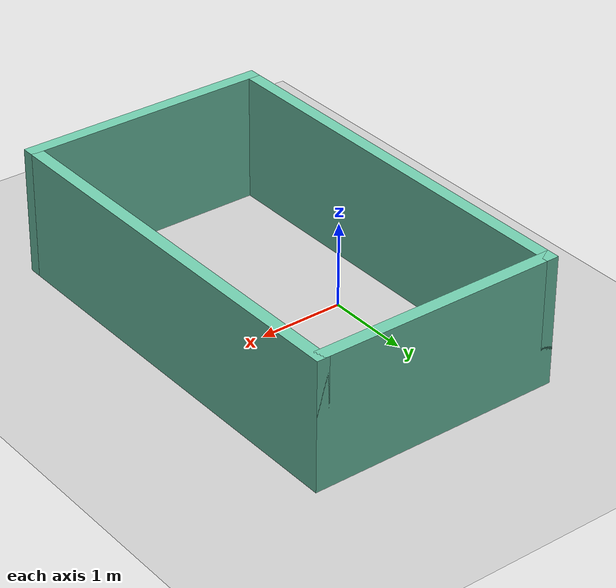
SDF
<sdf version="1.7">
 <world name="default">
  <light name="sun" type="directional">
   <pose>0 0 10 0 -0 0</pose>
   <diffuse>0.8 0.8 0.8 1</diffuse>
   <specular>0.2 0.2 0.2 1</specular>
   <attenuation>
    <range>1000</range>
    <constant>0.9</constant>
    <linear>0.01</linear>
    <quadratic>0.001</quadratic>
   </attenuation>
   <direction>-0.5 0.1 -0.9</direction>
   <spot><inner_angle>0</inner_angle><outer_angle>0</outer_angle><falloff>0</falloff></spot>
  </light>
  <model name="ground_plane">
   <static>1</static>
   <link name="link">
    <collision name="collision">
     <geometry><plane><normal>0 0 1</normal><size>100 100</size></plane></geometry>
     <surface><friction><ode><mu>100</mu><mu2>50</mu2></ode></friction></surface>
    </collision>
    <visual name="visual">
     <cast_shadows>0</cast_shadows>
     <geometry><plane><normal>0 0 1</normal><size>100 100</size></plane></geometry>
     <material>
      <script><uri>file://media/materials/scripts/gazebo.material</uri><name>Gazebo/Grey</name></script>
     </material>
    </visual>
   </link>
  </model>
  <gravity>0 0 -9.8</gravity>
  <magnetic_field>6e-06 2.3e-05 -4.2e-05</magnetic_field>
  <atmosphere type="adiabatic"/>
  <physics type="ode">
   <max_step_size>0.001</max_step_size>
   <real_time_factor>1</real_time_factor>
   <real_time_update_rate>1000</real_time_update_rate>
  </physics>
  <scene><ambient>0.4 0.4 0.4 1</ambient><background>0.7 0.7 0.7 1</background><shadows>1</shadows></scene>
  <audio><device>default</device></audio>
  <spherical_coordinates>
   <surface_model>EARTH_WGS84</surface_model>
   <latitude_deg>0</latitude_deg>
   <longitude_deg>0</longitude_deg>
   <elevation>0</elevation>
   <heading_deg>0</heading_deg>
  </spherical_coordinates>
  <model name="Untitled">
   <pose>0.705 -0.075 0 0 -0 0</pose>
   <link name="Wall_24">
    <collision name="Wall_24_Collision">
     <geometry><box><size>5 0.15 1.5</size></box></geometry>
     <pose>0 0 0.75 0 -0 0</pose>
    </collision>
    <visual name="Wall_24_Visual">
     <pose>0 0 0.75 0 -0 0</pose>
     <geometry><box><size>5 0.15 1.5</size></box></geometry>
     <material>
      <script><uri>file://media/materials/scripts/gazebo.material</uri><name>Gazebo/Grey</name></script>
      <ambient>0.435294 0.796078 0.67451 1</ambient>
     </material>
     <meta><layer>0</layer></meta>
    </visual>
    <pose>1.425 0 0 0 -0 -1.5708</pose>
   </link>
   <link name="Wall_25">
    <collision name="Wall_25_Collision">
     <geometry><box><size>3 0.15 1.5</size></box></geometry>
     <pose>0 0 0.75 0 -0 0</pose>
    </collision>
    <visual name="Wall_25_Visual">
     <pose>0 0 0.75 0 -0 0</pose>
     <geometry><box><size>3 0.15 1.5</size></box></geometry>
     <material>
      <script><uri>file://media/materials/scripts/gazebo.material</uri><name>Gazebo/Grey</name></script>
      <ambient>0.435294 0.796078 0.67451 1</ambient>
     </material>
     <meta><layer>0</layer></meta>
    </visual>
    <pose>-0 -2.425 0 0 -0 3.14159</pose>
   </link>
   <link name="Wall_27">
    <collision name="Wall_27_Collision">
     <geometry><box><size>5 0.15 1.5</size></box></geometry>
     <pose>0 0 0.75 0 -0 0</pose>
    </collision>
    <visual name="Wall_27_Visual">
     <pose>0 0 0.75 0 -0 0</pose>
     <geometry><box><size>5 0.15 1.5</size></box></geometry>
     <material>
      <script><uri>file://media/materials/scripts/gazebo.material</uri><name>Gazebo/Grey</name></script>
      <ambient>0.435294 0.796078 0.67451 1</ambient>
     </material>
     <meta><layer>0</layer></meta>
    </visual>
    <pose>-1.425 0 0 0 -0 1.5708</pose>
   </link>
   <link name="Wall_28">
    <collision name="Wall_28_Collision">
     <geometry><box><size>3 0.15 1.5</size></box></geometry>
     <pose>0 0 0.75 0 -0 0</pose>
    </collision>
    <visual name="Wall_28_Visual">
     <pose>0 0 0.75 0 -0 0</pose>
     <geometry><box><size>3 0.15 1.5</size></box></geometry>
     <material>
      <script><uri>file://media/materials/scripts/gazebo.material</uri><name>Gazebo/Grey</name></script>
      <ambient>0.435294 0.796078 0.67451 1</ambient>
     </material>
     <meta><layer>0</layer></meta>
    </visual>
    <pose>-0 2.425 0 0 -0 0</pose>
   </link>
   <static>1</static>
  </model>
 </world>
</sdf>
